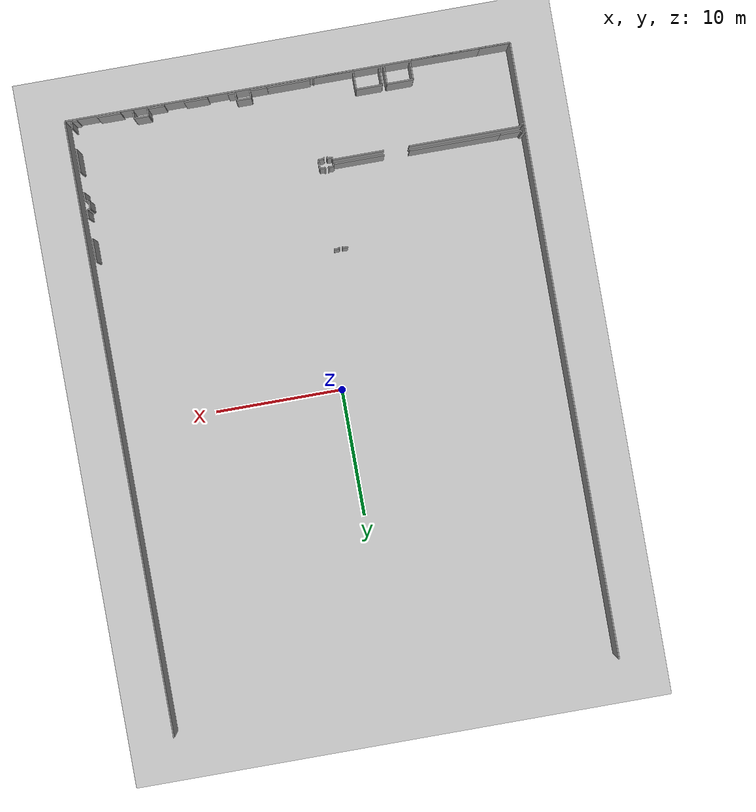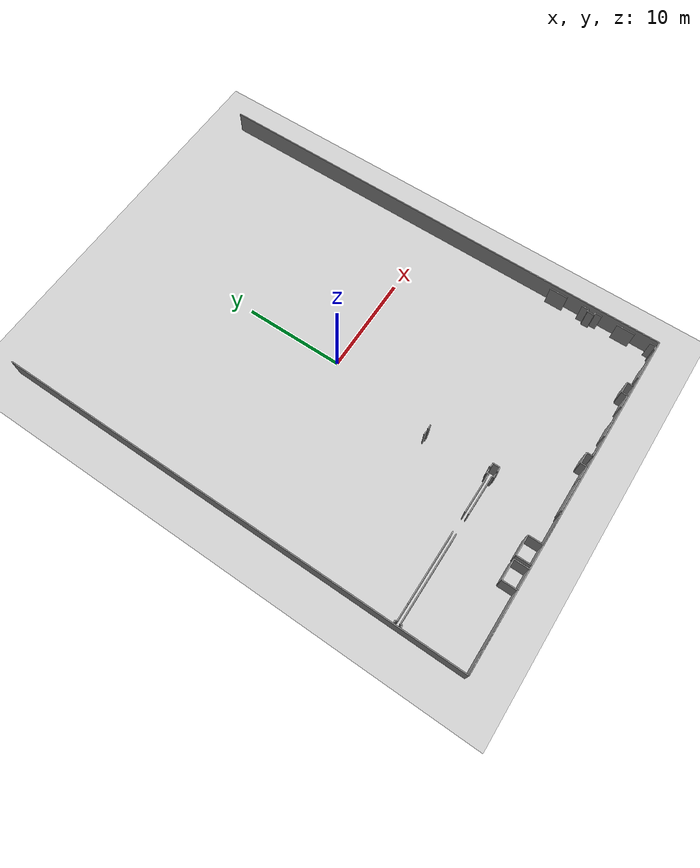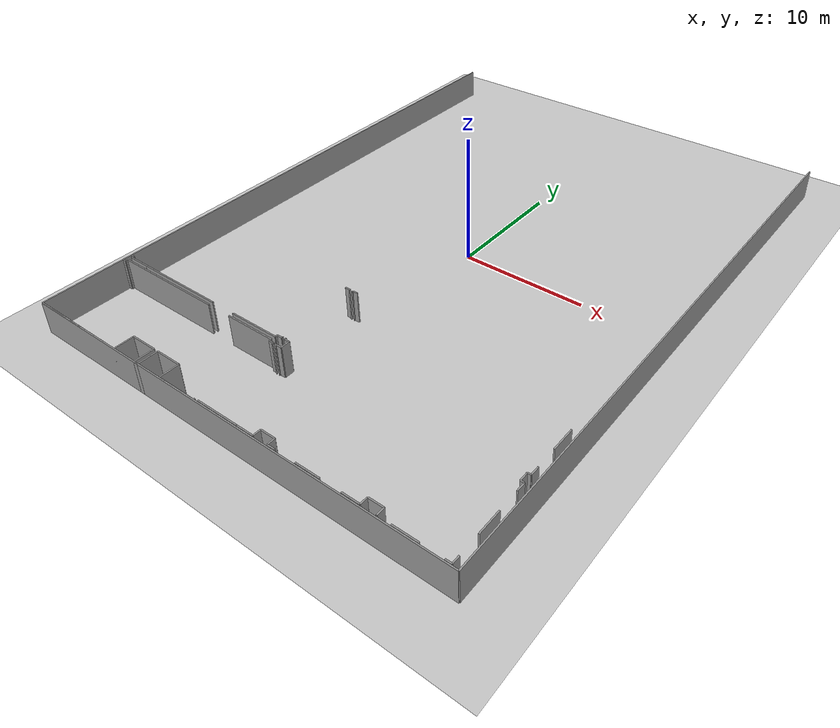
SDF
<sdf version="1.6">
 <world name="default">
  <model name="ground_plane">
   <static>1</static>
   <link name="link">
    <collision name="collision">
     <geometry><plane><normal>0 0 1</normal><size>100 100</size></plane></geometry>
     <surface><friction><ode><mu>100</mu><mu2>50</mu2></ode></friction></surface>
    </collision>
    <visual name="visual">
     <cast_shadows>0</cast_shadows>
     <geometry><plane><normal>0 0 1</normal><size>100 100</size></plane></geometry>
     <material>
      <script><uri>file://media/materials/scripts/gazebo.material</uri><name>Gazebo/Grey</name></script>
     </material>
    </visual>
   </link>
  </model>
  <model name="50055649">
   <static>1</static>
   <link name="Wall_20">
    <collision name="Wall_20_Collision">
     <geometry><box><size>1.65931705829 0.1 2.5</size></box></geometry>
     <pose>0.829658529146 0 1.25 0 0 0</pose>
    </collision>
    <visual name="Wall_20_Visual">
     <pose>0.829658529146 0 1.25 0 0 0</pose>
     <geometry><box><size>1.65931705829 0.1 2.5</size></box></geometry>
     <material>
      <script><uri>file://media/materials/scripts/gazebo.material</uri><name>Gazebo/Grey</name></script>
      <ambient>1 1 1 1</ambient>
     </material>
    </visual>
    <pose>1.95821525245 -41.3924436707 0 0 0 3.14159265359</pose>
   </link>
   <link name="Wall_21">
    <collision name="Wall_21_Collision">
     <geometry><box><size>0.160124032584 0.1 2.5</size></box></geometry>
     <pose>0.080062016292 0 1.25 0 0 0</pose>
    </collision>
    <visual name="Wall_21_Visual">
     <pose>0.080062016292 0 1.25 0 0 0</pose>
     <geometry><box><size>0.160124032584 0.1 2.5</size></box></geometry>
     <material>
      <script><uri>file://media/materials/scripts/gazebo.material</uri><name>Gazebo/Grey</name></script>
      <ambient>1 1 1 1</ambient>
     </material>
    </visual>
    <pose>0.298898194157 -41.3924436707 0 0 0 1.57079632679</pose>
   </link>
   <link name="Wall_22">
    <collision name="Wall_22_Collision">
     <geometry><box><size>0.282631625767 0.1 2.5</size></box></geometry>
     <pose>0.141315812884 0 1.25 0 0 0</pose>
    </collision>
    <visual name="Wall_22_Visual">
     <pose>0.141315812884 0 1.25 0 0 0</pose>
     <geometry><box><size>0.282631625767 0.1 2.5</size></box></geometry>
     <material>
      <script><uri>file://media/materials/scripts/gazebo.material</uri><name>Gazebo/Grey</name></script>
      <ambient>1 1 1 1</ambient>
     </material>
    </visual>
    <pose>0.298898194157 -41.2323196381 0 0 0 3.14159265359</pose>
   </link>
   <link name="Wall_64">
    <collision name="Wall_64_Collision">
     <geometry><box><size>0.412255842621 0.1 2.5</size></box></geometry>
     <pose>0.20612792131 0 1.25 0 0 0</pose>
    </collision>
    <visual name="Wall_64_Visual">
     <pose>0.20612792131 0 1.25 0 0 0</pose>
     <geometry><box><size>0.412255842621 0.1 2.5</size></box></geometry>
     <material>
      <script><uri>file://media/materials/scripts/gazebo.material</uri><name>Gazebo/Grey</name></script>
      <ambient>1 1 1 1</ambient>
     </material>
    </visual>
    <pose>15.0215404949 -34.9116140757 0 0 0 0.0</pose>
   </link>
   <link name="Wall_65">
    <collision name="Wall_65_Collision">
     <geometry><box><size>0.109291006367 0.1 2.5</size></box></geometry>
     <pose>0.0546455031834 0 1.25 0 0 0</pose>
    </collision>
    <visual name="Wall_65_Visual">
     <pose>0.0546455031834 0 1.25 0 0 0</pose>
     <geometry><box><size>0.109291006367 0.1 2.5</size></box></geometry>
     <material>
      <script><uri>file://media/materials/scripts/gazebo.material</uri><name>Gazebo/Grey</name></script>
      <ambient>1 1 1 1</ambient>
     </material>
    </visual>
    <pose>15.4337963375 -34.9116140757 0 0 0 -1.57079632679</pose>
   </link>
   <link name="Wall_66">
    <collision name="Wall_66_Collision">
     <geometry><box><size>0.116280547472 0.1 2.5</size></box></geometry>
     <pose>0.0581402737358 0 1.25 0 0 0</pose>
    </collision>
    <visual name="Wall_66_Visual">
     <pose>0.0581402737358 0 1.25 0 0 0</pose>
     <geometry><box><size>0.116280547472 0.1 2.5</size></box></geometry>
     <material>
      <script><uri>file://media/materials/scripts/gazebo.material</uri><name>Gazebo/Grey</name></script>
      <ambient>1 1 1 1</ambient>
     </material>
    </visual>
    <pose>15.4337963375 -41.1066349807 0 0 0 -1.57079632679</pose>
   </link>
   <link name="Wall_67">
    <collision name="Wall_67_Collision">
     <geometry><box><size>0.404630888688 0.1 2.5</size></box></geometry>
     <pose>0.202315444344 0 1.25 0 0 0</pose>
    </collision>
    <visual name="Wall_67_Visual">
     <pose>0.202315444344 0 1.25 0 0 0</pose>
     <geometry><box><size>0.404630888688 0.1 2.5</size></box></geometry>
     <material>
      <script><uri>file://media/materials/scripts/gazebo.material</uri><name>Gazebo/Grey</name></script>
      <ambient>1 1 1 1</ambient>
     </material>
    </visual>
    <pose>15.4337963375 -41.2229155282 0 0 0 3.14159265359</pose>
   </link>
   <link name="Wall_68">
    <collision name="Wall_68_Collision">
     <geometry><box><size>0.17905933485 0.1 2.5</size></box></geometry>
     <pose>0.0895296674249 0 1.25 0 0 0</pose>
    </collision>
    <visual name="Wall_68_Visual">
     <pose>0.0895296674249 0 1.25 0 0 0</pose>
     <geometry><box><size>0.17905933485 0.1 2.5</size></box></geometry>
     <material>
      <script><uri>file://media/materials/scripts/gazebo.material</uri><name>Gazebo/Grey</name></script>
      <ambient>1 1 1 1</ambient>
     </material>
    </visual>
    <pose>15.0291654488 -41.2229155282 0 0 0 -1.57079632679</pose>
   </link>
   <link name="Wall_69">
    <collision name="Wall_69_Collision">
     <geometry><box><size>3.988359237 0.1 2.5</size></box></geometry>
     <pose>1.9941796185 0 1.25 0 0 0</pose>
    </collision>
    <visual name="Wall_69_Visual">
     <pose>1.9941796185 0 1.25 0 0 0</pose>
     <geometry><box><size>3.988359237 0.1 2.5</size></box></geometry>
     <material>
      <script><uri>file://media/materials/scripts/gazebo.material</uri><name>Gazebo/Grey</name></script>
      <ambient>1 1 1 1</ambient>
     </material>
    </visual>
    <pose>15.0291654488 -41.4019748631 0 0 0 3.14159265359</pose>
   </link>
   <link name="Wall_70">
    <collision name="Wall_70_Collision">
     <geometry><box><size>7.10989468296 0.1 2.5</size></box></geometry>
     <pose>3.55494734148 0 1.25 0 0 0</pose>
    </collision>
    <visual name="Wall_70_Visual">
     <pose>3.55494734148 0 1.25 0 0 0</pose>
     <geometry><box><size>7.10989468296 0.1 2.5</size></box></geometry>
     <material>
      <script><uri>file://media/materials/scripts/gazebo.material</uri><name>Gazebo/Grey</name></script>
      <ambient>1 1 1 1</ambient>
     </material>
    </visual>
    <pose>9.06810354687 -41.4019748631 0 0 0 3.14025209994</pose>
   </link>
   <link name="Wall_71">
    <collision name="Wall_71_Collision">
     <geometry><box><size>2.38330643419 0.1 2.5</size></box></geometry>
     <pose>1.1916532171 0 1.25 0 0 0</pose>
    </collision>
    <visual name="Wall_71_Visual">
     <pose>1.1916532171 0 1.25 0 0 0</pose>
     <geometry><box><size>2.38330643419 0.1 2.5</size></box></geometry>
     <material>
      <script><uri>file://media/materials/scripts/gazebo.material</uri><name>Gazebo/Grey</name></script>
      <ambient>1 1 1 1</ambient>
     </material>
    </visual>
    <pose>2.38330643419 -48.2114399726 0 0 0 3.14159265359</pose>
   </link>
   <link name="Wall_72">
    <collision name="Wall_72_Collision">
     <geometry><box><size>0.290129497134 0.1 2.5</size></box></geometry>
     <pose>0.145064748567 0 1.25 0 0 0</pose>
    </collision>
    <visual name="Wall_72_Visual">
     <pose>0.145064748567 0 1.25 0 0 0</pose>
     <geometry><box><size>0.290129497134 0.1 2.5</size></box></geometry>
     <material>
      <script><uri>file://media/materials/scripts/gazebo.material</uri><name>Gazebo/Grey</name></script>
      <ambient>1 1 1 1</ambient>
     </material>
    </visual>
    <pose>0.0 -41.9180571617 0 0 0 0.0</pose>
   </link>
   <link name="Wall_73">
    <collision name="Wall_73_Collision">
     <geometry><box><size>0.1884634447 0.1 2.5</size></box></geometry>
     <pose>0.09423172235 0 1.25 0 0 0</pose>
    </collision>
    <visual name="Wall_73_Visual">
     <pose>0.09423172235 0 1.25 0 0 0</pose>
     <geometry><box><size>0.1884634447 0.1 2.5</size></box></geometry>
     <material>
      <script><uri>file://media/materials/scripts/gazebo.material</uri><name>Gazebo/Grey</name></script>
      <ambient>1 1 1 1</ambient>
     </material>
    </visual>
    <pose>0.290129497134 -41.9180571617 0 0 0 1.57079632679</pose>
   </link>
   <link name="Wall_74">
    <collision name="Wall_74_Collision">
     <geometry><box><size>8.75459085768 0.1 2.5</size></box></geometry>
     <pose>4.37729542884 0 1.25 0 0 0</pose>
    </collision>
    <visual name="Wall_74_Visual">
     <pose>4.37729542884 0 1.25 0 0 0</pose>
     <geometry><box><size>8.75459085768 0.1 2.5</size></box></geometry>
     <material>
      <script><uri>file://media/materials/scripts/gazebo.material</uri><name>Gazebo/Grey</name></script>
      <ambient>1 1 1 1</ambient>
     </material>
    </visual>
    <pose>0.290129497134 -41.729593717 0 0 0 0.0</pose>
   </link>
   <link name="Wall_75">
    <collision name="Wall_75_Collision">
     <geometry><box><size>4.00170290638 0.1 2.5</size></box></geometry>
     <pose>2.00085145319 0 1.25 0 0 0</pose>
    </collision>
    <visual name="Wall_75_Visual">
     <pose>2.00085145319 0 1.25 0 0 0</pose>
     <geometry><box><size>4.00170290638 0.1 2.5</size></box></geometry>
     <material>
      <script><uri>file://media/materials/scripts/gazebo.material</uri><name>Gazebo/Grey</name></script>
      <ambient>1 1 1 1</ambient>
     </material>
    </visual>
    <pose>11.0274625424 -41.729593717 0 0 0 0.0</pose>
   </link>
   <link name="Wall_76">
    <collision name="Wall_76_Collision">
     <geometry><box><size>0.181219738464 0.1 2.5</size></box></geometry>
     <pose>0.090609869232 0 1.25 0 0 0</pose>
    </collision>
    <visual name="Wall_76_Visual">
     <pose>0.090609869232 0 1.25 0 0 0</pose>
     <geometry><box><size>0.181219738464 0.1 2.5</size></box></geometry>
     <material>
      <script><uri>file://media/materials/scripts/gazebo.material</uri><name>Gazebo/Grey</name></script>
      <ambient>1 1 1 1</ambient>
     </material>
    </visual>
    <pose>15.0291654488 -41.729593717 0 0 0 -1.57079632679</pose>
   </link>
   <link name="Wall_77">
    <collision name="Wall_77_Collision">
     <geometry><box><size>0.392685127527 0.1 2.5</size></box></geometry>
     <pose>0.196342563764 0 1.25 0 0 0</pose>
    </collision>
    <visual name="Wall_77_Visual">
     <pose>0.196342563764 0 1.25 0 0 0</pose>
     <geometry><box><size>0.392685127527 0.1 2.5</size></box></geometry>
     <material>
      <script><uri>file://media/materials/scripts/gazebo.material</uri><name>Gazebo/Grey</name></script>
      <ambient>1 1 1 1</ambient>
     </material>
    </visual>
    <pose>15.0291654488 -41.9108134555 0 0 0 0.0</pose>
   </link>
   <link name="Wall_78">
    <collision name="Wall_78_Collision">
     <geometry><box><size>0.122507593183 0.1 2.5</size></box></geometry>
     <pose>0.0612537965917 0 1.25 0 0 0</pose>
    </collision>
    <visual name="Wall_78_Visual">
     <pose>0.0612537965917 0 1.25 0 0 0</pose>
     <geometry><box><size>0.122507593183 0.1 2.5</size></box></geometry>
     <material>
      <script><uri>file://media/materials/scripts/gazebo.material</uri><name>Gazebo/Grey</name></script>
      <ambient>1 1 1 1</ambient>
     </material>
    </visual>
    <pose>15.4218505763 -41.9108134555 0 0 0 -1.57079632679</pose>
   </link>
   <link name="Wall_79">
    <collision name="Wall_79_Collision">
     <geometry><box><size>0.118695116217 0.1 2.5</size></box></geometry>
     <pose>0.0593475581085 0 1.25 0 0 0</pose>
    </collision>
    <visual name="Wall_79_Visual">
     <pose>0.0593475581085 0 1.25 0 0 0</pose>
     <geometry><box><size>0.118695116217 0.1 2.5</size></box></geometry>
     <material>
      <script><uri>file://media/materials/scripts/gazebo.material</uri><name>Gazebo/Grey</name></script>
      <ambient>1 1 1 1</ambient>
     </material>
    </visual>
    <pose>15.4218505763 -48.0921094435 0 0 0 -1.57079632679</pose>
   </link>
   <link name="Wall_80">
    <collision name="Wall_80_Collision">
     <geometry><box><size>3.13499980938 0.1 2.5</size></box></geometry>
     <pose>1.56749990469 0 1.25 0 0 0</pose>
    </collision>
    <visual name="Wall_80_Visual">
     <pose>1.56749990469 0 1.25 0 0 0</pose>
     <geometry><box><size>3.13499980938 0.1 2.5</size></box></geometry>
     <material>
      <script><uri>file://media/materials/scripts/gazebo.material</uri><name>Gazebo/Grey</name></script>
      <ambient>1 1 1 1</ambient>
     </material>
    </visual>
    <pose>15.4218505763 -48.2108045597 0 0 0 3.14159265359</pose>
   </link>
   <link name="Wall_81">
    <collision name="Wall_81_Collision">
     <geometry><box><size>1.46615155867 0.1 2.5</size></box></geometry>
     <pose>0.733075779334 0 1.25 0 0 0</pose>
    </collision>
    <visual name="Wall_81_Visual">
     <pose>0.733075779334 0 1.25 0 0 0</pose>
     <geometry><box><size>1.46615155867 0.1 2.5</size></box></geometry>
     <material>
      <script><uri>file://media/materials/scripts/gazebo.material</uri><name>Gazebo/Grey</name></script>
      <ambient>1 1 1 1</ambient>
     </material>
    </visual>
    <pose>12.2868507669 -48.2108045597 0 0 0 1.57079632679</pose>
   </link>
   <link name="Wall_82">
    <collision name="Wall_82_Collision">
     <geometry><box><size>2.04297932367 0.1 2.5</size></box></geometry>
     <pose>1.02148966183 0 1.25 0 0 0</pose>
    </collision>
    <visual name="Wall_82_Visual">
     <pose>1.02148966183 0 1.25 0 0 0</pose>
     <geometry><box><size>2.04297932367 0.1 2.5</size></box></geometry>
     <material>
      <script><uri>file://media/materials/scripts/gazebo.material</uri><name>Gazebo/Grey</name></script>
      <ambient>1 1 1 1</ambient>
     </material>
    </visual>
    <pose>12.2868507669 -46.7446530011 0 0 0 3.14159265359</pose>
   </link>
   <link name="Wall_83">
    <collision name="Wall_83_Collision">
     <geometry><box><size>1.48330770502 0.1 2.5</size></box></geometry>
     <pose>0.741653852508 0 1.25 0 0 0</pose>
    </collision>
    <visual name="Wall_83_Visual">
     <pose>0.741653852508 0 1.25 0 0 0</pose>
     <geometry><box><size>1.48330770502 0.1 2.5</size></box></geometry>
     <material>
      <script><uri>file://media/materials/scripts/gazebo.material</uri><name>Gazebo/Grey</name></script>
      <ambient>1 1 1 1</ambient>
     </material>
    </visual>
    <pose>10.2438714433 -46.7446530011 0 0 0 -1.57079632679</pose>
   </link>
   <link name="Wall_84">
    <collision name="Wall_84_Collision">
     <geometry><box><size>0.357864504569 0.1 2.5</size></box></geometry>
     <pose>0.178932252284 0 1.25 0 0 0</pose>
    </collision>
    <visual name="Wall_84_Visual">
     <pose>0.178932252284 0 1.25 0 0 0</pose>
     <geometry><box><size>0.357864504569 0.1 2.5</size></box></geometry>
     <material>
      <script><uri>file://media/materials/scripts/gazebo.material</uri><name>Gazebo/Grey</name></script>
      <ambient>1 1 1 1</ambient>
     </material>
    </visual>
    <pose>10.2438714433 -48.2279607061 0 0 0 3.14159265359</pose>
   </link>
   <link name="Wall_85">
    <collision name="Wall_85_Collision">
     <geometry><box><size>1.48267229219 0.1 2.5</size></box></geometry>
     <pose>0.741336146094 0 1.25 0 0 0</pose>
    </collision>
    <visual name="Wall_85_Visual">
     <pose>0.741336146094 0 1.25 0 0 0</pose>
     <geometry><box><size>1.48267229219 0.1 2.5</size></box></geometry>
     <material>
      <script><uri>file://media/materials/scripts/gazebo.material</uri><name>Gazebo/Grey</name></script>
      <ambient>1 1 1 1</ambient>
     </material>
    </visual>
    <pose>9.88600693871 -48.2279607061 0 0 0 1.57079632679</pose>
   </link>
   <link name="Wall_86">
    <collision name="Wall_86_Collision">
     <geometry><box><size>2.0473001309 0.1 2.5</size></box></geometry>
     <pose>1.02365006545 0 1.25 0 0 0</pose>
    </collision>
    <visual name="Wall_86_Visual">
     <pose>1.02365006545 0 1.25 0 0 0</pose>
     <geometry><box><size>2.0473001309 0.1 2.5</size></box></geometry>
     <material>
      <script><uri>file://media/materials/scripts/gazebo.material</uri><name>Gazebo/Grey</name></script>
      <ambient>1 1 1 1</ambient>
     </material>
    </visual>
    <pose>9.88600693871 -46.7452884139 0 0 0 3.14159265359</pose>
   </link>
   <link name="Wall_87">
    <collision name="Wall_87_Collision">
     <geometry><box><size>1.48267229219 0.1 2.5</size></box></geometry>
     <pose>0.741336146094 0 1.25 0 0 0</pose>
    </collision>
    <visual name="Wall_87_Visual">
     <pose>0.741336146094 0 1.25 0 0 0</pose>
     <geometry><box><size>1.48267229219 0.1 2.5</size></box></geometry>
     <material>
      <script><uri>file://media/materials/scripts/gazebo.material</uri><name>Gazebo/Grey</name></script>
      <ambient>1 1 1 1</ambient>
     </material>
    </visual>
    <pose>7.83870680781 -46.7452884139 0 0 0 -1.57079632679</pose>
   </link>
   <link name="Wall_88">
    <collision name="Wall_88_Collision">
     <geometry><box><size>5.45542538865 0.1 2.5</size></box></geometry>
     <pose>2.72771269433 0 1.25 0 0 0</pose>
    </collision>
    <visual name="Wall_88_Visual">
     <pose>2.72771269433 0 1.25 0 0 0</pose>
     <geometry><box><size>5.45542538865 0.1 2.5</size></box></geometry>
     <material>
      <script><uri>file://media/materials/scripts/gazebo.material</uri><name>Gazebo/Grey</name></script>
      <ambient>1 1 1 1</ambient>
     </material>
    </visual>
    <pose>7.83870680781 -48.2279607061 0 0 0 3.13856433635</pose>
   </link>
   <link name="Wall_130">
    <collision name="Wall_130_Collision">
     <geometry><box><size>0.0426997420224 0.1 2.5</size></box></geometry>
     <pose>0.0213498710112 0 1.25 0 0 0</pose>
    </collision>
    <visual name="Wall_130_Visual">
     <pose>0.0213498710112 0 1.25 0 0 0</pose>
     <geometry><box><size>0.0426997420224 0.1 2.5</size></box></geometry>
     <material>
      <script><uri>file://media/materials/scripts/gazebo.material</uri><name>Gazebo/Grey</name></script>
      <ambient>1 1 1 1</ambient>
     </material>
    </visual>
    <pose>19.0388745568 -48.0560179949 0 0 0 -1.57079632679</pose>
   </link>
   <link name="Wall_131">
    <collision name="Wall_131_Collision">
     <geometry><box><size>3.35650472112 0.1 2.5</size></box></geometry>
     <pose>1.67825236056 0 1.25 0 0 0</pose>
    </collision>
    <visual name="Wall_131_Visual">
     <pose>1.67825236056 0 1.25 0 0 0</pose>
     <geometry><box><size>3.35650472112 0.1 2.5</size></box></geometry>
     <material>
      <script><uri>file://media/materials/scripts/gazebo.material</uri><name>Gazebo/Grey</name></script>
      <ambient>1 1 1 1</ambient>
     </material>
    </visual>
    <pose>19.0388745568 -48.0987177369 0 0 0 3.14159265359</pose>
   </link>
   <link name="Wall_132">
    <collision name="Wall_132_Collision">
     <geometry><box><size>0.111959740243 0.1 2.5</size></box></geometry>
     <pose>0.0559798701216 0 1.25 0 0 0</pose>
    </collision>
    <visual name="Wall_132_Visual">
     <pose>0.0559798701216 0 1.25 0 0 0</pose>
     <geometry><box><size>0.111959740243 0.1 2.5</size></box></geometry>
     <material>
      <script><uri>file://media/materials/scripts/gazebo.material</uri><name>Gazebo/Grey</name></script>
      <ambient>1 1 1 1</ambient>
     </material>
    </visual>
    <pose>15.6823698357 -42.0288731589 0 0 0 1.57079632679</pose>
   </link>
   <link name="Wall_133">
    <collision name="Wall_133_Collision">
     <geometry><box><size>0.427886998183 0.1 2.5</size></box></geometry>
     <pose>0.213943499091 0 1.25 0 0 0</pose>
    </collision>
    <visual name="Wall_133_Visual">
     <pose>0.213943499091 0 1.25 0 0 0</pose>
     <geometry><box><size>0.427886998183 0.1 2.5</size></box></geometry>
     <material>
      <script><uri>file://media/materials/scripts/gazebo.material</uri><name>Gazebo/Grey</name></script>
      <ambient>1 1 1 1</ambient>
     </material>
    </visual>
    <pose>15.6823698357 -41.9169134186 0 0 0 0.0</pose>
   </link>
   <link name="Wall_134">
    <collision name="Wall_134_Collision">
     <geometry><box><size>0.68942291807 0.1 2.5</size></box></geometry>
     <pose>0.344711459035 0 1.25 0 0 0</pose>
    </collision>
    <visual name="Wall_134_Visual">
     <pose>0.344711459035 0 1.25 0 0 0</pose>
     <geometry><box><size>0.68942291807 0.1 2.5</size></box></geometry>
     <material>
      <script><uri>file://media/materials/scripts/gazebo.material</uri><name>Gazebo/Grey</name></script>
      <ambient>1 1 1 1</ambient>
     </material>
    </visual>
    <pose>16.1102568339 -41.9169134186 0 0 0 1.57079632679</pose>
   </link>
   <link name="Wall_135">
    <collision name="Wall_135_Collision">
     <geometry><box><size>0.42026204425 0.1 2.5</size></box></geometry>
     <pose>0.210131022125 0 1.25 0 0 0</pose>
    </collision>
    <visual name="Wall_135_Visual">
     <pose>0.210131022125 0 1.25 0 0 0</pose>
     <geometry><box><size>0.42026204425 0.1 2.5</size></box></geometry>
     <material>
      <script><uri>file://media/materials/scripts/gazebo.material</uri><name>Gazebo/Grey</name></script>
      <ambient>1 1 1 1</ambient>
     </material>
    </visual>
    <pose>16.1102568339 -41.2274905006 0 0 0 3.14159265359</pose>
   </link>
   <link name="Wall_136">
    <collision name="Wall_136_Collision">
     <geometry><box><size>0.130132547116 0.1 2.5</size></box></geometry>
     <pose>0.0650662735579 0 1.25 0 0 0</pose>
    </collision>
    <visual name="Wall_136_Visual">
     <pose>0.0650662735579 0 1.25 0 0 0</pose>
     <geometry><box><size>0.130132547116 0.1 2.5</size></box></geometry>
     <material>
      <script><uri>file://media/materials/scripts/gazebo.material</uri><name>Gazebo/Grey</name></script>
      <ambient>1 1 1 1</ambient>
     </material>
    </visual>
    <pose>15.6899947896 -41.2274905006 0 0 0 1.57079632679</pose>
   </link>
   <link name="Wall_137">
    <collision name="Wall_137_Collision">
     <geometry><box><size>0.109418088932 0.1 2.5</size></box></geometry>
     <pose>0.0547090444662 0 1.25 0 0 0</pose>
    </collision>
    <visual name="Wall_137_Visual">
     <pose>0.0547090444662 0 1.25 0 0 0</pose>
     <geometry><box><size>0.109418088932 0.1 2.5</size></box></geometry>
     <material>
      <script><uri>file://media/materials/scripts/gazebo.material</uri><name>Gazebo/Grey</name></script>
      <ambient>1 1 1 1</ambient>
     </material>
    </visual>
    <pose>15.6899947896 -35.0207779995 0 0 0 1.57079632679</pose>
   </link>
   <link name="Wall_138">
    <collision name="Wall_138_Collision">
     <geometry><box><size>0.417339145243 0.1 2.5</size></box></geometry>
     <pose>0.208669572621 0 1.25 0 0 0</pose>
    </collision>
    <visual name="Wall_138_Visual">
     <pose>0.208669572621 0 1.25 0 0 0</pose>
     <geometry><box><size>0.417339145243 0.1 2.5</size></box></geometry>
     <material>
      <script><uri>file://media/materials/scripts/gazebo.material</uri><name>Gazebo/Grey</name></script>
      <ambient>1 1 1 1</ambient>
     </material>
    </visual>
    <pose>15.6899947896 -34.9113599105 0 0 0 0.0</pose>
   </link>
   <link name="Wall_158">
    <collision name="Wall_158_Collision">
     <geometry><box><size>1.81817026522 0.1 2.5</size></box></geometry>
     <pose>0.909085132611 0 1.25 0 0 0</pose>
    </collision>
    <visual name="Wall_158_Visual">
     <pose>0.909085132611 0 1.25 0 0 0</pose>
     <geometry><box><size>1.81817026522 0.1 2.5</size></box></geometry>
     <material>
      <script><uri>file://media/materials/scripts/gazebo.material</uri><name>Gazebo/Grey</name></script>
      <ambient>1 1 1 1</ambient>
     </material>
    </visual>
    <pose>34.3088614673 -37.1499193026 0 0 0 -1.57079632679</pose>
   </link>
   <link name="Wall_159">
    <collision name="Wall_159_Collision">
     <geometry><box><size>0.702385339755 0.1 2.5</size></box></geometry>
     <pose>0.351192669878 0 1.25 0 0 0</pose>
    </collision>
    <visual name="Wall_159_Visual">
     <pose>0.351192669878 0 1.25 0 0 0</pose>
     <geometry><box><size>0.702385339755 0.1 2.5</size></box></geometry>
     <material>
      <script><uri>file://media/materials/scripts/gazebo.material</uri><name>Gazebo/Grey</name></script>
      <ambient>1 1 1 1</ambient>
     </material>
    </visual>
    <pose>34.3088614673 -40.5323488671 0 0 0 -1.57079632679</pose>
   </link>
   <link name="Wall_160">
    <collision name="Wall_160_Collision">
     <geometry><box><size>0.249590158726 0.1 2.5</size></box></geometry>
     <pose>0.124795079363 0 1.25 0 0 0</pose>
    </collision>
    <visual name="Wall_160_Visual">
     <pose>0.124795079363 0 1.25 0 0 0</pose>
     <geometry><box><size>0.249590158726 0.1 2.5</size></box></geometry>
     <material>
      <script><uri>file://media/materials/scripts/gazebo.material</uri><name>Gazebo/Grey</name></script>
      <ambient>1 1 1 1</ambient>
     </material>
    </visual>
    <pose>34.3088614673 -41.2347342068 0 0 0 3.14159265359</pose>
   </link>
   <link name="Wall_161">
    <collision name="Wall_161_Collision">
     <geometry><box><size>0.668835542452 0.1 2.5</size></box></geometry>
     <pose>0.334417771226 0 1.25 0 0 0</pose>
    </collision>
    <visual name="Wall_161_Visual">
     <pose>0.334417771226 0 1.25 0 0 0</pose>
     <geometry><box><size>0.668835542452 0.1 2.5</size></box></geometry>
     <material>
      <script><uri>file://media/materials/scripts/gazebo.material</uri><name>Gazebo/Grey</name></script>
      <ambient>1 1 1 1</ambient>
     </material>
    </visual>
    <pose>34.0592713086 -41.2347342068 0 0 0 -1.57079632679</pose>
   </link>
   <link name="Wall_162">
    <collision name="Wall_162_Collision">
     <geometry><box><size>0.262679662977 0.1 2.5</size></box></geometry>
     <pose>0.131339831489 0 1.25 0 0 0</pose>
    </collision>
    <visual name="Wall_162_Visual">
     <pose>0.131339831489 0 1.25 0 0 0</pose>
     <geometry><box><size>0.262679662977 0.1 2.5</size></box></geometry>
     <material>
      <script><uri>file://media/materials/scripts/gazebo.material</uri><name>Gazebo/Grey</name></script>
      <ambient>1 1 1 1</ambient>
     </material>
    </visual>
    <pose>34.0592713086 -41.9035697493 0 0 0 0.0</pose>
   </link>
   <link name="Wall_163">
    <collision name="Wall_163_Collision">
     <geometry><box><size>0.679510477958 0.1 2.5</size></box></geometry>
     <pose>0.339755238979 0 1.25 0 0 0</pose>
    </collision>
    <visual name="Wall_163_Visual">
     <pose>0.339755238979 0 1.25 0 0 0</pose>
     <geometry><box><size>0.679510477958 0.1 2.5</size></box></geometry>
     <material>
      <script><uri>file://media/materials/scripts/gazebo.material</uri><name>Gazebo/Grey</name></script>
      <ambient>1 1 1 1</ambient>
     </material>
    </visual>
    <pose>34.3219509715 -41.9035697493 0 0 0 -1.57079632679</pose>
   </link>
   <link name="Wall_164">
    <collision name="Wall_164_Collision">
     <geometry><box><size>1.79732872447 0.1 2.5</size></box></geometry>
     <pose>0.898664362236 0 1.25 0 0 0</pose>
    </collision>
    <visual name="Wall_164_Visual">
     <pose>0.898664362236 0 1.25 0 0 0</pose>
     <geometry><box><size>1.79732872447 0.1 2.5</size></box></geometry>
     <material>
      <script><uri>file://media/materials/scripts/gazebo.material</uri><name>Gazebo/Grey</name></script>
      <ambient>1 1 1 1</ambient>
     </material>
    </visual>
    <pose>34.3219509715 -44.1606831959 0 0 0 -1.57079632679</pose>
   </link>
   <link name="Wall_165">
    <collision name="Wall_165_Collision">
     <geometry><box><size>0.56424659101 0.1 2.5</size></box></geometry>
     <pose>0.282123295505 0 1.25 0 0 0</pose>
    </collision>
    <visual name="Wall_165_Visual">
     <pose>0.282123295505 0 1.25 0 0 0</pose>
     <geometry><box><size>0.56424659101 0.1 2.5</size></box></geometry>
     <material>
      <script><uri>file://media/materials/scripts/gazebo.material</uri><name>Gazebo/Grey</name></script>
      <ambient>1 1 1 1</ambient>
     </material>
    </visual>
    <pose>34.3219509715 -47.5462898245 0 0 0 -1.57079632679</pose>
   </link>
   <link name="Wall_166">
    <collision name="Wall_166_Collision">
     <geometry><box><size>0.444661896834 0.1 2.5</size></box></geometry>
     <pose>0.222330948417 0 1.25 0 0 0</pose>
    </collision>
    <visual name="Wall_166_Visual">
     <pose>0.222330948417 0 1.25 0 0 0</pose>
     <geometry><box><size>0.444661896834 0.1 2.5</size></box></geometry>
     <material>
      <script><uri>file://media/materials/scripts/gazebo.material</uri><name>Gazebo/Grey</name></script>
      <ambient>1 1 1 1</ambient>
     </material>
    </visual>
    <pose>34.3219509715 -48.1105364155 0 0 0 3.14159265359</pose>
   </link>
   <link name="Wall_167">
    <collision name="Wall_167_Collision">
     <geometry><box><size>1.83062435664 0.1 2.5</size></box></geometry>
     <pose>0.915312178322 0 1.25 0 0 0</pose>
    </collision>
    <visual name="Wall_167_Visual">
     <pose>0.915312178322 0 1.25 0 0 0</pose>
     <geometry><box><size>1.83062435664 0.1 2.5</size></box></geometry>
     <material>
      <script><uri>file://media/materials/scripts/gazebo.material</uri><name>Gazebo/Grey</name></script>
      <ambient>1 1 1 1</ambient>
     </material>
    </visual>
    <pose>32.3031173353 -48.1105364155 0 0 0 3.14159265359</pose>
   </link>
   <link name="Wall_168">
    <collision name="Wall_168_Collision">
     <geometry><box><size>0.593221415954 0.1 2.5</size></box></geometry>
     <pose>0.296610707977 0 1.25 0 0 0</pose>
    </collision>
    <visual name="Wall_168_Visual">
     <pose>0.296610707977 0 1.25 0 0 0</pose>
     <geometry><box><size>0.593221415954 0.1 2.5</size></box></geometry>
     <material>
      <script><uri>file://media/materials/scripts/gazebo.material</uri><name>Gazebo/Grey</name></script>
      <ambient>1 1 1 1</ambient>
     </material>
    </visual>
    <pose>29.5201362325 -48.1105364155 0 0 0 1.57079632679</pose>
   </link>
   <link name="Wall_169">
    <collision name="Wall_169_Collision">
     <geometry><box><size>1.13611813595 0.1 2.5</size></box></geometry>
     <pose>0.568059067976 0 1.25 0 0 0</pose>
    </collision>
    <visual name="Wall_169_Visual">
     <pose>0.568059067976 0 1.25 0 0 0</pose>
     <geometry><box><size>1.13611813595 0.1 2.5</size></box></geometry>
     <material>
      <script><uri>file://media/materials/scripts/gazebo.material</uri><name>Gazebo/Grey</name></script>
      <ambient>1 1 1 1</ambient>
     </material>
    </visual>
    <pose>29.5201362325 -47.5173149996 0 0 0 3.14159265359</pose>
   </link>
   <link name="Wall_170">
    <collision name="Wall_170_Collision">
     <geometry><box><size>0.57479444395 0.1 2.5</size></box></geometry>
     <pose>0.287397221975 0 1.25 0 0 0</pose>
    </collision>
    <visual name="Wall_170_Visual">
     <pose>0.287397221975 0 1.25 0 0 0</pose>
     <geometry><box><size>0.57479444395 0.1 2.5</size></box></geometry>
     <material>
      <script><uri>file://media/materials/scripts/gazebo.material</uri><name>Gazebo/Grey</name></script>
      <ambient>1 1 1 1</ambient>
     </material>
    </visual>
    <pose>28.3840180966 -47.5173149996 0 0 0 -1.57079632679</pose>
   </link>
   <link name="Wall_171">
    <collision name="Wall_171_Collision">
     <geometry><box><size>1.32165868165 0.1 2.5</size></box></geometry>
     <pose>0.660829340823 0 1.25 0 0 0</pose>
    </collision>
    <visual name="Wall_171_Visual">
     <pose>0.660829340823 0 1.25 0 0 0</pose>
     <geometry><box><size>1.32165868165 0.1 2.5</size></box></geometry>
     <material>
      <script><uri>file://media/materials/scripts/gazebo.material</uri><name>Gazebo/Grey</name></script>
      <ambient>1 1 1 1</ambient>
     </material>
    </visual>
    <pose>28.3840180966 -48.0921094435 0 0 0 3.14159265359</pose>
   </link>
   <link name="Wall_172">
    <collision name="Wall_172_Collision">
     <geometry><box><size>1.84168053985 0.1 2.5</size></box></geometry>
     <pose>0.920840269923 0 1.25 0 0 0</pose>
    </collision>
    <visual name="Wall_172_Visual">
     <pose>0.920840269923 0 1.25 0 0 0</pose>
     <geometry><box><size>1.84168053985 0.1 2.5</size></box></geometry>
     <material>
      <script><uri>file://media/materials/scripts/gazebo.material</uri><name>Gazebo/Grey</name></script>
      <ambient>1 1 1 1</ambient>
     </material>
    </visual>
    <pose>25.5146208492 -48.0921094435 0 0 0 3.14159265359</pose>
   </link>
   <link name="Wall_173">
    <collision name="Wall_173_Collision">
     <geometry><box><size>0.577971508089 0.1 2.5</size></box></geometry>
     <pose>0.288985754044 0 1.25 0 0 0</pose>
    </collision>
    <visual name="Wall_173_Visual">
     <pose>0.288985754044 0 1.25 0 0 0</pose>
     <geometry><box><size>0.577971508089 0.1 2.5</size></box></geometry>
     <material>
      <script><uri>file://media/materials/scripts/gazebo.material</uri><name>Gazebo/Grey</name></script>
      <ambient>1 1 1 1</ambient>
     </material>
    </visual>
    <pose>22.096989414 -48.0921094435 0 0 0 3.14159265359</pose>
   </link>
   <link name="Wall_174">
    <collision name="Wall_174_Collision">
     <geometry><box><size>0.574413196254 0.1 2.5</size></box></geometry>
     <pose>0.287206598127 0 1.25 0 0 0</pose>
    </collision>
    <visual name="Wall_174_Visual">
     <pose>0.287206598127 0 1.25 0 0 0</pose>
     <geometry><box><size>0.574413196254 0.1 2.5</size></box></geometry>
     <material>
      <script><uri>file://media/materials/scripts/gazebo.material</uri><name>Gazebo/Grey</name></script>
      <ambient>1 1 1 1</ambient>
     </material>
    </visual>
    <pose>21.5190179059 -48.0921094435 0 0 0 1.57079632679</pose>
   </link>
   <link name="Wall_175">
    <collision name="Wall_175_Collision">
     <geometry><box><size>1.13916811753 0.1 2.5</size></box></geometry>
     <pose>0.569584058763 0 1.25 0 0 0</pose>
    </collision>
    <visual name="Wall_175_Visual">
     <pose>0.569584058763 0 1.25 0 0 0</pose>
     <geometry><box><size>1.13916811753 0.1 2.5</size></box></geometry>
     <material>
      <script><uri>file://media/materials/scripts/gazebo.material</uri><name>Gazebo/Grey</name></script>
      <ambient>1 1 1 1</ambient>
     </material>
    </visual>
    <pose>21.5190179059 -47.5176962473 0 0 0 3.14159265359</pose>
   </link>
   <link name="Wall_176">
    <collision name="Wall_176_Collision">
     <geometry><box><size>0.58165690249 0.1 2.5</size></box></geometry>
     <pose>0.290828451245 0 1.25 0 0 0</pose>
    </collision>
    <visual name="Wall_176_Visual">
     <pose>0.290828451245 0 1.25 0 0 0</pose>
     <geometry><box><size>0.58165690249 0.1 2.5</size></box></geometry>
     <material>
      <script><uri>file://media/materials/scripts/gazebo.material</uri><name>Gazebo/Grey</name></script>
      <ambient>1 1 1 1</ambient>
     </material>
    </visual>
    <pose>20.3798497884 -47.5176962473 0 0 0 -1.57079632679</pose>
   </link>
   <link name="Wall_177">
    <collision name="Wall_177_Collision">
     <geometry><box><size>1.34999809376 0.1 2.5</size></box></geometry>
     <pose>0.674999046881 0 1.25 0 0 0</pose>
    </collision>
    <visual name="Wall_177_Visual">
     <pose>0.674999046881 0 1.25 0 0 0</pose>
     <geometry><box><size>1.34999809376 0.1 2.5</size></box></geometry>
     <material>
      <script><uri>file://media/materials/scripts/gazebo.material</uri><name>Gazebo/Grey</name></script>
      <ambient>1 1 1 1</ambient>
     </material>
    </visual>
    <pose>20.3798497884 -48.0993531497 0 0 0 3.14159265359</pose>
   </link>
   <link name="Wall_178">
    <collision name="Wall_178_Collision">
     <geometry><box><size>0.0442645195086 0.1 2.5</size></box></geometry>
     <pose>0.0221322597543 0 1.25 0 0 0</pose>
    </collision>
    <visual name="Wall_178_Visual">
     <pose>0.0221322597543 0 1.25 0 0 0</pose>
     <geometry><box><size>0.0442645195086 0.1 2.5</size></box></geometry>
     <material>
      <script><uri>file://media/materials/scripts/gazebo.material</uri><name>Gazebo/Grey</name></script>
      <ambient>1 1 1 1</ambient>
     </material>
    </visual>
    <pose>19.0298516946 -48.0993531497 0 0 0 1.36551804734</pose>
   </link>
   <link name="Wall_179">
    <collision name="Wall_179_Collision">
     <geometry><box><size>48.2279607061 0.1 2.5</size></box></geometry>
     <pose>24.113980353 0 1.25 0 0 0</pose>
    </collision>
    <visual name="Wall_179_Visual">
     <pose>24.113980353 0 1.25 0 0 0</pose>
     <geometry><box><size>48.2279607061 0.1 2.5</size></box></geometry>
     <material>
      <script><uri>file://media/materials/scripts/gazebo.material</uri><name>Gazebo/Grey</name></script>
      <ambient>1 1 1 1</ambient>
     </material>
    </visual>
    <pose>34.8185896377 -48.2279607061 0 0 0 1.57079632679</pose>
   </link>
   <link name="Wall_180">
    <collision name="Wall_180_Collision">
     <geometry><box><size>34.8185896377 0.1 2.5</size></box></geometry>
     <pose>17.4092948188 0 1.25 0 0 0</pose>
    </collision>
    <visual name="Wall_180_Visual">
     <pose>17.4092948188 0 1.25 0 0 0</pose>
     <geometry><box><size>34.8185896377 0.1 2.5</size></box></geometry>
     <material>
      <script><uri>file://media/materials/scripts/gazebo.material</uri><name>Gazebo/Grey</name></script>
      <ambient>1 1 1 1</ambient>
     </material>
    </visual>
    <pose>34.8185896377 -48.2279607061 0 0 0 3.14159265359</pose>
   </link>
   <link name="Wall_181">
    <collision name="Wall_181_Collision">
     <geometry><box><size>48.2279607061 0.1 2.5</size></box></geometry>
     <pose>24.113980353 0 1.25 0 0 0</pose>
    </collision>
    <visual name="Wall_181_Visual">
     <pose>24.113980353 0 1.25 0 0 0</pose>
     <geometry><box><size>48.2279607061 0.1 2.5</size></box></geometry>
     <material>
      <script><uri>file://media/materials/scripts/gazebo.material</uri><name>Gazebo/Grey</name></script>
      <ambient>1 1 1 1</ambient>
     </material>
    </visual>
    <pose>0.0 -48.2279607061 0 0 0 1.57079632679</pose>
   </link>
   <pose>-17.4 24.1279607061 0 0 0 0</pose>
  </model>
 </world>
</sdf>
